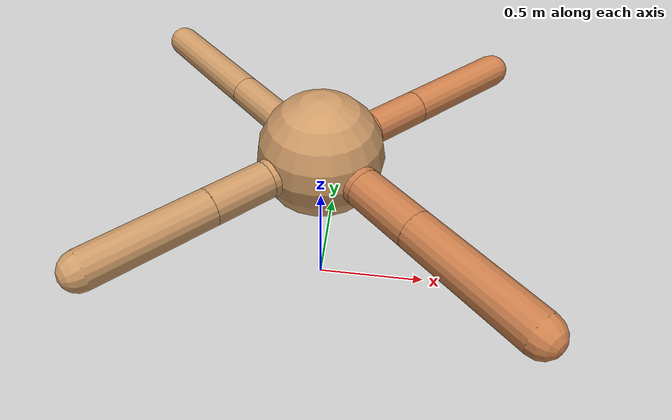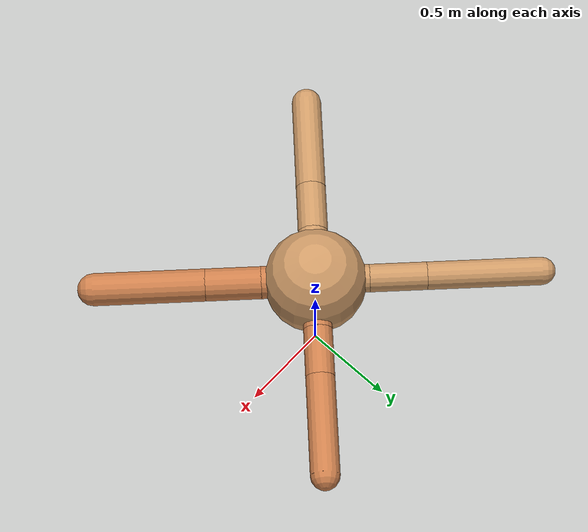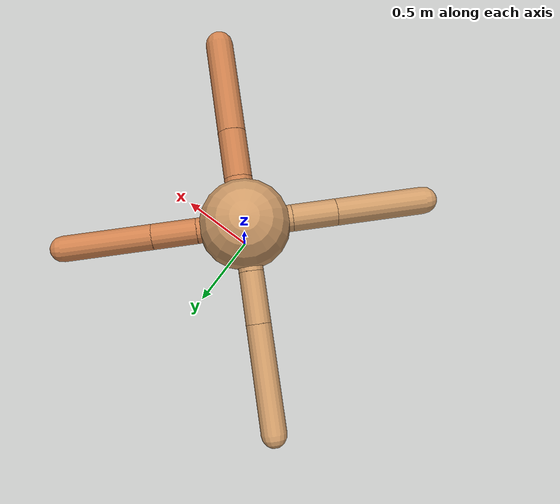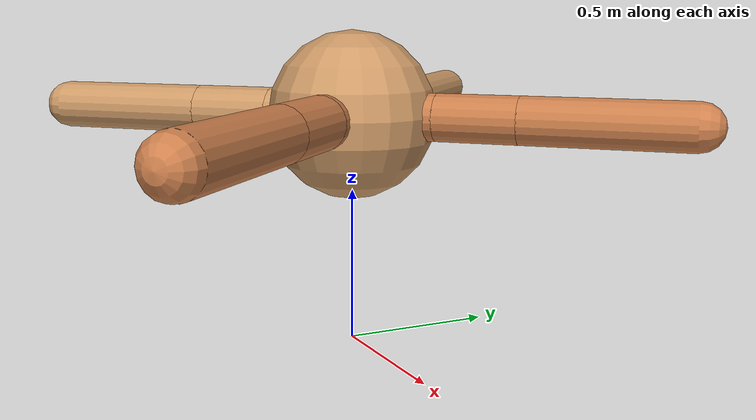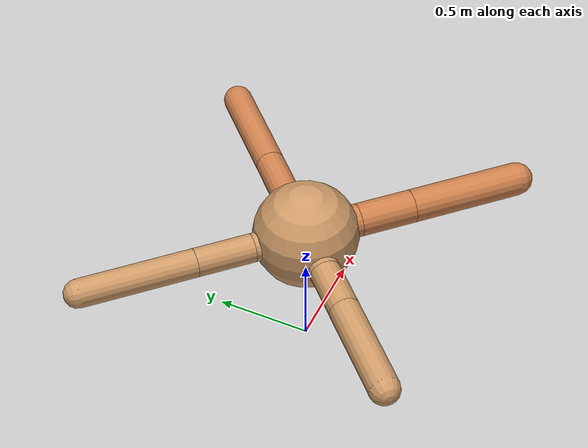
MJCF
<?xml version="1.0" ?>
<mujoco model="ant">

	<compiler angle="degree" coordinate="local" inertiafromgeom="true"/>

	<option integrator="RK4" timestep="0.01"/>

	<custom>

		<numeric data="0.0 0.0 0.55 1.0 0.0 0.0 0.0 0.0 1.0 0.0 -1.0 0.0 -1.0 0.0 1.0" name="init_qpos"/>

	</custom>

	<default>

		<joint armature="1" damping="1" limited="true"/>

		<geom conaffinity="0" condim="3" density="5.0" friction="1.5 0.1 0.1" margin="0.01" rgba="0.8 0.6 0.4 1"/>

	</default>

	<worldbody>

		<body name="torso" pos="0 0 0.75">

			<geom name="torso_geom" pos="0 0 0" size="0.2730091155943884" type="sphere"/>

			<!--joint armature="0" damping="0" limited="false" margin="0.01" name="root" pos="0 0 0" type="free"/-->

			<body name="front_left_leg" pos="0 0 0">

				<geom fromto="0 0 0 0.2 0.2 0" name="aux_1_geom" size="0.07653428728668829" type="capsule" rgba=".8 .5 .3 1"/>

				<body name="aux_1" pos="0.2 0.2 0">

					<joint axis="0 0 1" name="hip_1" pos="0.0 0.0 0.0" range="-40 40" type="hinge"/>

					<geom fromto="0 0 0 0.18581457196642975 0.18581457196642975 0" name="left_leg_geom" size="0.07653428728668829" type="capsule" rgba=".8 .5 .3 1"/>

					<body pos="0.18581457196642975 0.18581457196642975 0" name="front_left_foot">

						<joint axis="-1 1 0" name="ankle_1" pos="0.0 0.0 0.0" range="30 100" type="hinge"/>

						<geom fromto="0 0 0 0.3716291439328595 0.3716291439328595 0" name="left_ankle_geom" size="0.07653428728668829" type="capsule" rgba=".8 .5 .3 1"/>

					</body>

				</body>

			</body>

			<body name="front_right_leg" pos="0 0 0">

				<geom fromto="0 0 0 -0.2 0.2 0" name="aux_2_geom" size="0.07361011304887034" type="capsule"/>

				<body name="aux_2" pos="-0.2 0.2 0">

					<joint axis="0 0 1" name="hip_2" pos="0.0 0.0 0.0" range="-40 40" type="hinge"/>

					<geom fromto="0 0 0 -0.2134130426484851 0.2134130426484851 0" name="right_leg_geom" size="0.07361011304887034" type="capsule"/>

					<body pos="-0.2134130426484851 0.2134130426484851 0" name="front_right_foot">

						<joint axis="1 1 0" name="ankle_2" pos="0.0 0.0 0.0" range="-100 -30" type="hinge"/>

						<geom fromto="0 0 0 -0.4268260852969702 0.4268260852969702 0" name="right_ankle_geom" size="0.07361011304887034" type="capsule"/>

					</body>

				</body>

			</body>

			<body name="left_back_leg" pos="0 0 0">

				<geom fromto="0 0 0 -0.2 -0.2 0" name="aux_3_geom" size="0.08026240314426339" type="capsule"/>

				<body name="aux_3" pos="-0.2 -0.2 0">

					<joint axis="0 0 1" name="hip_3" pos="0.0 0.0 0.0" range="-40 40" type="hinge"/>

					<geom fromto="0 0 0 -0.1859515547145315 -0.1859515547145315 0" name="back_leg_geom" size="0.08026240314426339" type="capsule"/>

					<body pos="-0.1859515547145315 -0.1859515547145315 0" name="left_back_foot">

						<joint axis="-1 1 0" name="ankle_3" pos="0.0 0.0 0.0" range="-100 -30" type="hinge"/>

						<geom fromto="0 0 0 -0.371903109429063 -0.371903109429063 0" name="third_ankle_geom" size="0.08026240314426339" type="capsule"/>

					</body>

				</body>

			</body>

			<body name="right_back_leg" pos="0 0 0">

				<geom fromto="0 0 0 0.2 -0.2 0" name="aux_4_geom" size="0.08555720579637323" type="capsule" rgba=".8 .5 .3 1"/>

				<body name="aux_4" pos="0.2 -0.2 0">

					<joint axis="0 0 1" name="hip_4" pos="0.0 0.0 0.0" range="-40 40" type="hinge"/>

					<geom fromto="0 0 0 0.2066991919132145 -0.2066991919132145 0" name="rightback_leg_geom" size="0.08555720579637323" type="capsule" rgba=".8 .5 .3 1"/>

					<body pos="0.2066991919132145 -0.2066991919132145 0" name="right_back_foot">

						<joint axis="1 1 0" name="ankle_4" pos="0.0 0.0 0.0" range="30 100" type="hinge"/>

						<geom fromto="0 0 0 0.413398383826429 -0.413398383826429 0" name="fourth_ankle_geom" size="0.08555720579637323" type="capsule" rgba=".8 .5 .3 1"/>

					</body>

				</body>

			</body>

		</body>

	</worldbody>

	<actuator>

		<motor ctrllimited="true" ctrlrange="-1.0 1.0" joint="hip_4" gear="150"/>

		<motor ctrllimited="true" ctrlrange="-1.0 1.0" joint="ankle_4" gear="150"/>

		<motor ctrllimited="true" ctrlrange="-1.0 1.0" joint="hip_1" gear="150"/>

		<motor ctrllimited="true" ctrlrange="-1.0 1.0" joint="ankle_1" gear="150"/>

		<motor ctrllimited="true" ctrlrange="-1.0 1.0" joint="hip_2" gear="150"/>

		<motor ctrllimited="true" ctrlrange="-1.0 1.0" joint="ankle_2" gear="150"/>

		<motor ctrllimited="true" ctrlrange="-1.0 1.0" joint="hip_3" gear="150"/>

		<motor ctrllimited="true" ctrlrange="-1.0 1.0" joint="ankle_3" gear="150"/>

	</actuator>

</mujoco>
